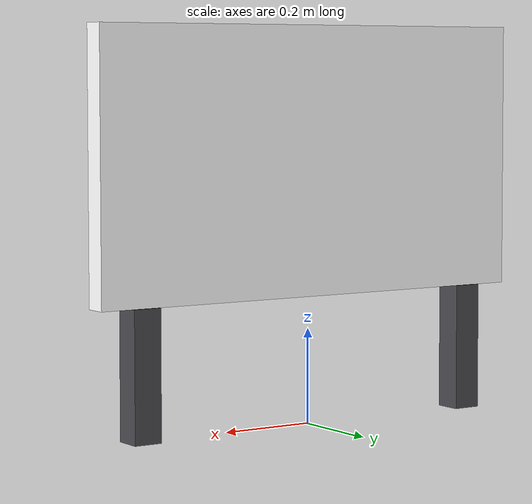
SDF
<?xml version="1.0"?>
<sdf version="1.7">
  <model name="sign_cup_kitchen">
    <static>true</static>
    <link name="link">

      <!-- Printed board: face looks toward -Y when yaw = 0. -->
      <visual name="board_visual">
        <pose>0 0 0.55 0 0 0</pose>
        <geometry><box><size>1.00 0.05 0.56</size></box></geometry>
        <material>
          <ambient>1 1 1 1</ambient>
          <diffuse>1 1 1 1</diffuse>
          <pbr>
            <metal>
              <albedo_map>materials/textures/sign_cup_kitchen.png</albedo_map>
              <metalness>0.0</metalness>
              <roughness>1.0</roughness>
            </metal>
          </pbr>
        </material>
      </visual>
      <collision name="board_collision">
        <pose>0 0 0.55 0 0 0</pose>
        <geometry><box><size>1.00 0.05 0.56</size></box></geometry>
      </collision>

      <!-- Left leg. -->
      <visual name="leg_left_visual">
        <pose>-0.40 0 0.135 0 0 0</pose>
        <geometry><box><size>0.06 0.06 0.27</size></box></geometry>
        <material>
          <ambient>0.20 0.20 0.22 1</ambient>
          <diffuse>0.28 0.28 0.30 1</diffuse>
          <specular>0.05 0.05 0.05 1</specular>
        </material>
      </visual>
      <collision name="leg_left_collision">
        <pose>-0.40 0 0.135 0 0 0</pose>
        <geometry><box><size>0.06 0.06 0.27</size></box></geometry>
      </collision>

      <!-- Right leg. -->
      <visual name="leg_right_visual">
        <pose>0.40 0 0.135 0 0 0</pose>
        <geometry><box><size>0.06 0.06 0.27</size></box></geometry>
        <material>
          <ambient>0.20 0.20 0.22 1</ambient>
          <diffuse>0.28 0.28 0.30 1</diffuse>
          <specular>0.05 0.05 0.05 1</specular>
        </material>
      </visual>
      <collision name="leg_right_collision">
        <pose>0.40 0 0.135 0 0 0</pose>
        <geometry><box><size>0.06 0.06 0.27</size></box></geometry>
      </collision>

    </link>
  </model>
</sdf>
